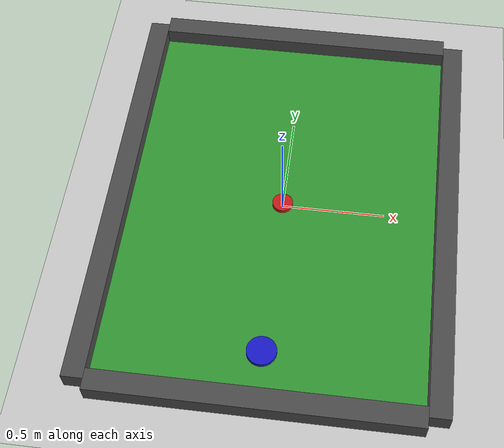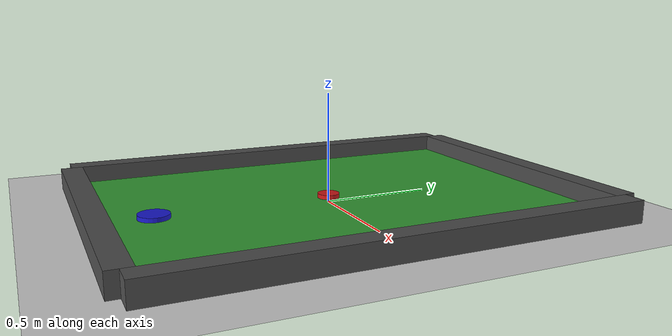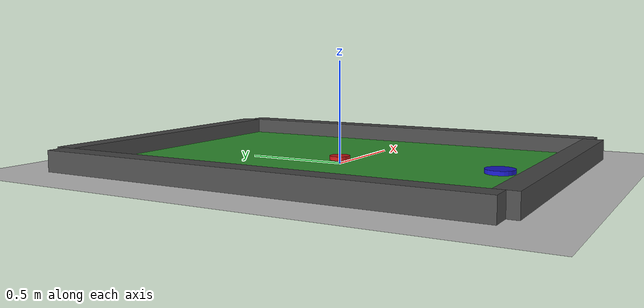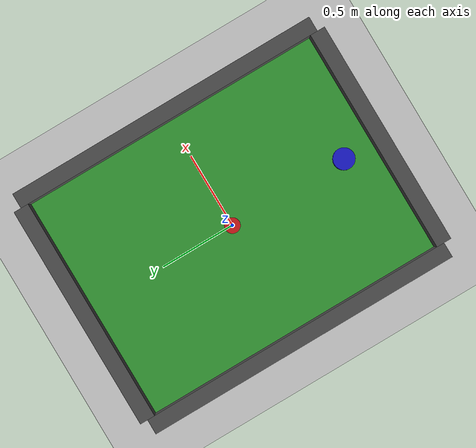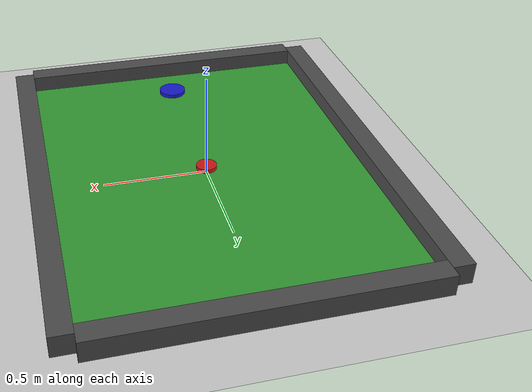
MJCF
<mujoco model="air_hockey">

    <compiler angle="radian" coordinate="local"/>

    <!-- Top-down abstraction: gravity, modest timestep -->
    <option gravity="0 0 -9.81" timestep="0.01"/>

    <default>
        <geom
            friction="0.0001 0.00005 0.00001"
            condim="4"
            solref="0.002 1"
            solimp="0.95 0.99 0.001 0.5 2"
        />
    </default>

    <worldbody>
        <!-- Light and background floor -->
        <light name="light" pos="0 0 3" dir="0 0 -1" directional="true"/>
        <geom name="floor" type="plane" pos="0 0 0" size="0 0 0.1"
              rgba="0.8 0.8 0.8 1"/>

        <!-- Table surface: x in [-1,1], y in [-0.5,0.5] -->
        <geom name="table" type="box"
            pos="0 0 0.0"
            size="0.75 1.0 0.02"
            rgba="0.2 0.6 0.2 1"
            contype="1" conaffinity="1"/>

        <!-- Physical walls around the table -->
        <!-- Side walls (along x edges), slightly longer than table in y -->
        <geom name="wall_left"  type="box"
            pos="-0.80 0 0.05"
            size="0.05 1.05 0.05"
            rgba="0.3 0.3 0.3 1"
            contype="1" conaffinity="1"/>

        <geom name="wall_right" type="box"
            pos="0.80 0 0.05"
            size="0.05 1.05 0.05"
            rgba="0.3 0.3 0.3 1"
            contype="1" conaffinity="1"/>

        <!-- Top/bottom rails (along y edges), thinner toward the table center -->
        <geom name="wall_top" type="box"
            pos="0 1.05 0.05"
            size="0.75 0.05 0.05"
            rgba="0.3 0.3 0.3 1"
            contype="1" conaffinity="1"/>

        <geom name="wall_bottom" type="box"
            pos="0 -1.05 0.05"
            size="0.75 0.05 0.05"
            rgba="0.3 0.3 0.3 1"
            contype="1" conaffinity="1"/>

        <!-- Visual goal segments: 0.4 units wide, centered -->

        <!-- Y-position marker strips on the table -->

        <!-- Puck body with free joint -->
        <body name="puck" pos="0 0 0.03">
            <joint name="puck_free" type="free"/>
            <geom name="puck_geom" type="cylinder"
                  size="0.05 0.01"
                  density="200"
                  rgba="0.8 0.1 0.1 1"
                  contype="1" conaffinity="1"/>
            <!-- Reasonable inertia for small puck -->
            <inertial pos="0 0 0" mass="0.02"
                      diaginertia="2.5e-5 2.5e-5 5e-5"/>
        </body>

        <!-- Paddle body controlled via two slide joints (x,y) -->
        <body name="paddle" pos="0 -0.8 0.03">
            <joint name="paddle_slide_x" type="slide"
                   axis="1 0 0"
                   limited="true" range="-0.75 0.75"/>
            <joint name="paddle_slide_y" type="slide"
                   axis="0 1 0"
                   limited="true" range="-1.0 1.0"/>
            <geom name="paddle_geom" type="cylinder"
                  size="0.07 0.01"
                  density="400"
                  rgba="0.1 0.1 0.8 1"
                  contype="1" conaffinity="1"/>
            <inertial pos="0 0 0" mass="0.05"
                      diaginertia="2.5e-4 2.5e-4 5e-4"/>
        </body>

        <!-- Top-down camera for debugging / recordings -->
        <camera
            name="top"
            pos="0 -3.0 2.0"
            euler="35 0 0"
            fovy="35"
            mode="fixed"
        />
        <camera name="top_down" pos="0 0 2" zaxis="0 0 -1"/>
        <camera name="diag" pos="0 -2 1" euler="45 0 0"/>

    </worldbody>

    <actuator>
        <!-- Motors that your Python code already expects -->
        <motor name="ax" joint="paddle_slide_x" gear="1.0"/>
        <motor name="ay" joint="paddle_slide_y" gear="1.0"/>
    </actuator>

</mujoco>
